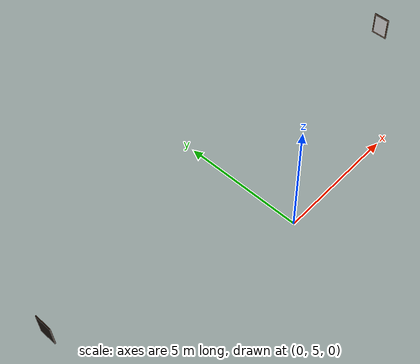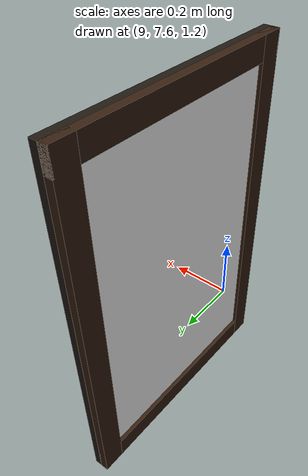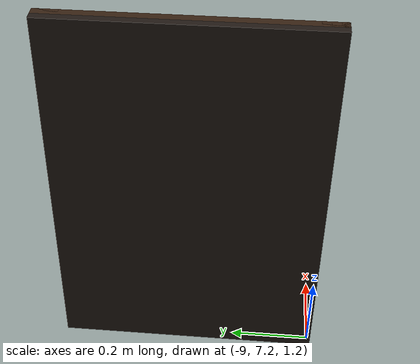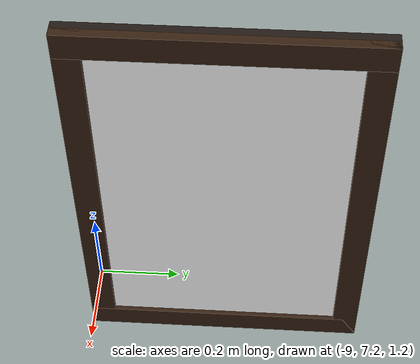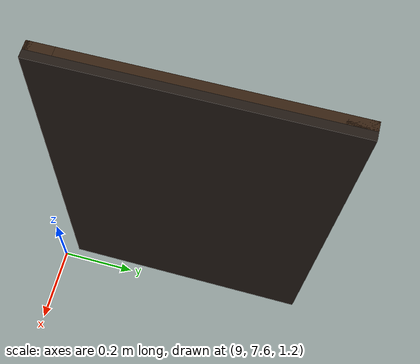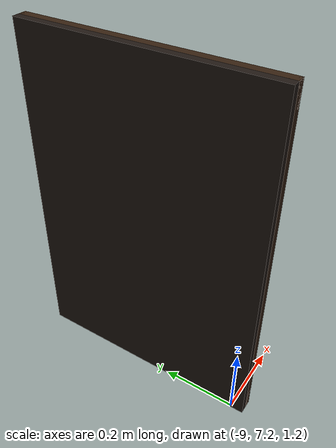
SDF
<sdf version="1.7">
 <world name="aws_hospital">
  <gravity>0 0 -9.8</gravity>
  <physics type="ode"><max_step_size>0.01</max_step_size><real_time_factor>1</real_time_factor></physics>
  <plugin name="ignition::gazebo::systems::Physics" filename="libignition-gazebo-physics-system.so"/>
  <plugin name="ignition::gazebo::systems::UserCommands" filename="libignition-gazebo-user-commands-system.so"/>
  <plugin name="ignition::gazebo::systems::SceneBroadcaster" filename="libignition-gazebo-scene-broadcaster-system.so"/>
  <plugin name="ignition::gazebo::systems::Imu" filename="ignition-gazebo-imu-system"/>
  <plugin name="ignition::gazebo::systems::Sensors" filename="ignition-gazebo-sensors-system">
   <render_engine>ogre2</render_engine>
  </plugin>
  <scene>
   <ambient>0.8 0.8 0.8 1</ambient>
   <background>0.3 0.7 0.9 1</background>
   <shadows>0</shadows>
   <grid>false</grid>
  </scene>
  <light type="directional" name="sun">
   <cast_shadows>0</cast_shadows>
   <pose>0 0 12 0 0 0</pose>
   <diffuse>1 1 1 1</diffuse>
   <specular>0.3 0.3 0.3 1</specular>
   <direction>0.2 0.2 -1</direction>
  </light>
  <model name="ground_plane">
   <static>true</static>
   <link name="link">
    <collision name="collision">
     <geometry><plane><normal>0.0 0.0 1</normal><size>1 1</size></plane></geometry>
    </collision>
   </link>
  </model>
  <include>
   <uri>model://no_talk_poster</uri>
   <name>no_talk_poster_lobby_east</name>
   <pose>8.94 7.95 1.60 0 0 3.1416</pose>
  </include>
  <include>
   <uri>model://no_talk_poster</uri>
   <name>no_talk_poster_lobby_west</name>
   <pose>-8.94 7.525 1.60 0 0 0</pose>
  </include>
 </world>
</sdf>

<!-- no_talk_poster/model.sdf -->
<sdf version="1.9">
  <model name="no_talk_poster">
    <static>true</static>
    <link name="link">

      <collision name="frame_col">
        <pose>0.021 0 0 0 0 0</pose>
        <geometry><box><size>0.052 0.68 0.98</size></box></geometry>
      </collision>

      <visual name="back_plate">
        <pose>0.005 0 0 0 0 0</pose>
        <geometry><box><size>0.020 0.68 0.98</size></box></geometry>
        <material><ambient>0.06 0.05 0.04 1</ambient><diffuse>0.12 0.09 0.07 1</diffuse><specular>0.05 0.05 0.05 1</specular></material>
      </visual>

      <visual name="print">
        <pose>0.021 0 0 0 0 0</pose>
        <geometry><box><size>0.012 0.60 0.90</size></box></geometry>
        <material><ambient>1 1 1 1</ambient><diffuse>1 1 1 1</diffuse>
          <pbr><metal><albedo_map>no_talk.png</albedo_map><metalness>0</metalness><roughness>0.9</roughness></metal></pbr>
        </material>
      </visual>

      <!-- Dark wood rails, standing 1 cm proud of the print. -->
      <visual name="rail_top">
        <pose>0.026 0 0.46 0 0 0</pose>
        <geometry><box><size>0.022 0.68 0.060</size></box></geometry>
        <material><ambient>0.10 0.06 0.03 1</ambient><diffuse>0.20 0.12 0.06 1</diffuse><specular>0.15 0.12 0.10 1</specular></material>
      </visual>
      <visual name="rail_bottom">
        <pose>0.026 0 -0.46 0 0 0</pose>
        <geometry><box><size>0.022 0.68 0.060</size></box></geometry>
        <material><ambient>0.10 0.06 0.03 1</ambient><diffuse>0.20 0.12 0.06 1</diffuse><specular>0.15 0.12 0.10 1</specular></material>
      </visual>
      <visual name="rail_left">
        <pose>0.026 0.31 0 0 0 0</pose>
        <geometry><box><size>0.022 0.060 0.98</size></box></geometry>
        <material><ambient>0.10 0.06 0.03 1</ambient><diffuse>0.20 0.12 0.06 1</diffuse><specular>0.15 0.12 0.10 1</specular></material>
      </visual>
      <visual name="rail_right">
        <pose>0.026 -0.31 0 0 0 0</pose>
        <geometry><box><size>0.022 0.060 0.98</size></box></geometry>
        <material><ambient>0.10 0.06 0.03 1</ambient><diffuse>0.20 0.12 0.06 1</diffuse><specular>0.15 0.12 0.10 1</specular></material>
      </visual>

    </link>
  </model>
</sdf>
